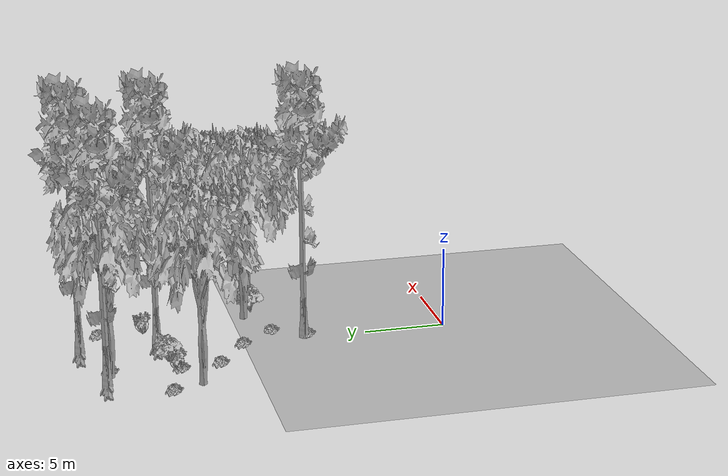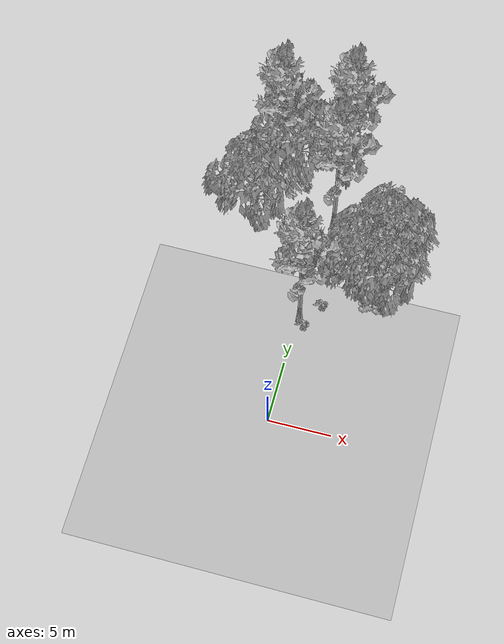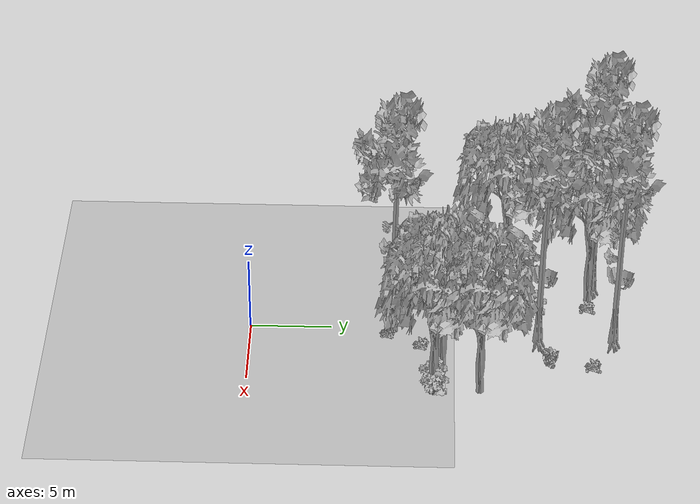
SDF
<sdf version="1.7">
 <world name="default">
  <model name="ground_plane">
   <static>1</static>
   <link name="link">
    <collision name="collision">
     <pose>-50 0 0 0 -0 0</pose>
     <geometry><plane><normal>0 0 1</normal><size>80 80</size></plane></geometry>
     <surface><contact><ode><min_depth>0.01</min_depth><max_vel>0</max_vel></ode></contact></surface>
    </collision>
    <visual name="grass">
     <cast_shadows>0</cast_shadows>
     <geometry>
      <mesh>
       <scale>0.46714285714285714 0.46714285714285714 0.1</scale>
       <uri>file://grass_plane/meshes/grass_plane.dae</uri>
      </mesh>
     </geometry>
    </visual>
   </link>
  </model>
  <model name="Tree 28">
   <static>1</static>
   <pose>-4.4084460784714565 21.315842113175883 0 1.57079 -0 0</pose>
   <link name="link">
    <collision name="collision">
     <geometry><mesh><scale>3.5 5 3.5</scale><uri>model://tree_9/meshes/tree_9.obj</uri></mesh></geometry>
    </collision>
    <visual name="visual">
     <geometry><mesh><scale>3.5 5 3.5</scale><uri>model://tree_9/meshes/tree_9.obj</uri></mesh></geometry>
    </visual>
   </link>
  </model>
  <model name="Tree 170">
   <static>1</static>
   <pose>-5.417349186433675 15.906392296588109 0 1.57079 -0 0</pose>
   <link name="link">
    <collision name="collision">
     <geometry><mesh><scale>3.5 5 3.5</scale><uri>model://tree_2/meshes/tree_2.obj</uri></mesh></geometry>
    </collision>
    <visual name="visual">
     <geometry><mesh><scale>3.5 5 3.5</scale><uri>model://tree_2/meshes/tree_2.obj</uri></mesh></geometry>
    </visual>
   </link>
  </model>
  <model name="Tree 251">
   <static>1</static>
   <pose>0.795492295190293 22.4082129513138 0 1.57079 -0 0</pose>
   <link name="link">
    <collision name="collision">
     <geometry><mesh><scale>3.5 5 3.5</scale><uri>model://tree_9/meshes/tree_9.obj</uri></mesh></geometry>
    </collision>
    <visual name="visual">
     <geometry><mesh><scale>3.5 5 3.5</scale><uri>model://tree_9/meshes/tree_9.obj</uri></mesh></geometry>
    </visual>
   </link>
  </model>
  <model name="Tree 309">
   <static>1</static>
   <pose>0.2209771321212699 8.826567919775108 0 1.57079 -0 0</pose>
   <link name="link">
    <collision name="collision">
     <geometry><mesh><scale>3.5 5 3.5</scale><uri>model://tree_9/meshes/tree_9.obj</uri></mesh></geometry>
    </collision>
    <visual name="visual">
     <geometry><mesh><scale>3.5 5 3.5</scale><uri>model://tree_9/meshes/tree_9.obj</uri></mesh></geometry>
    </visual>
   </link>
  </model>
  <model name="Tree 389">
   <static>1</static>
   <pose>-3.170250204577748 20.947474823802644 0 1.57079 -0 0</pose>
   <link name="link">
    <collision name="collision">
     <geometry><mesh><scale>3.5 5 3.5</scale><uri>model://tree_2/meshes/tree_2.obj</uri></mesh></geometry>
    </collision>
    <visual name="visual">
     <geometry><mesh><scale>3.5 5 3.5</scale><uri>model://tree_2/meshes/tree_2.obj</uri></mesh></geometry>
    </visual>
   </link>
  </model>
  <model name="Tree 458">
   <static>1</static>
   <pose>4.051383926262446 11.841430044016583 0 1.57079 -0 0</pose>
   <link name="link">
    <collision name="collision">
     <geometry><mesh><scale>3.5 5 3.5</scale><uri>model://tree_2/meshes/tree_2.obj</uri></mesh></geometry>
    </collision>
    <visual name="visual">
     <geometry><mesh><scale>3.5 5 3.5</scale><uri>model://tree_2/meshes/tree_2.obj</uri></mesh></geometry>
    </visual>
   </link>
  </model>
  <model name="Tree 497">
   <static>1</static>
   <pose>0.8266595844558822 17.767478885142545 0 1.57079 -0 0</pose>
   <link name="link">
    <collision name="collision">
     <geometry><mesh><scale>3.5 5 3.5</scale><uri>model://tree_9/meshes/tree_9.obj</uri></mesh></geometry>
    </collision>
    <visual name="visual">
     <geometry><mesh><scale>3.5 5 3.5</scale><uri>model://tree_9/meshes/tree_9.obj</uri></mesh></geometry>
    </visual>
   </link>
  </model>
  <model name="Tree 530">
   <static>1</static>
   <pose>5.713466053802463 11.347540337762439 0 1.57079 -0 0</pose>
   <link name="link">
    <collision name="collision">
     <geometry><mesh><scale>3.5 5 3.5</scale><uri>model://tree_2/meshes/tree_2.obj</uri></mesh></geometry>
    </collision>
    <visual name="visual">
     <geometry><mesh><scale>3.5 5 3.5</scale><uri>model://tree_2/meshes/tree_2.obj</uri></mesh></geometry>
    </visual>
   </link>
  </model>
  <model name="Tree 536">
   <static>1</static>
   <pose>5.755557848680098 14.11021828227674 0 1.57079 -0 0</pose>
   <link name="link">
    <collision name="collision">
     <geometry><mesh><scale>3.5 5 3.5</scale><uri>model://tree_2/meshes/tree_2.obj</uri></mesh></geometry>
    </collision>
    <visual name="visual">
     <geometry><mesh><scale>3.5 5 3.5</scale><uri>model://tree_2/meshes/tree_2.obj</uri></mesh></geometry>
    </visual>
   </link>
  </model>
  <model name="Bush 103">
   <static>1</static>
   <pose>5.1067889982777075 11.23509859049772 0 1.57079 -0 0</pose>
   <link name="link">
    <collision name="collision">
     <geometry><mesh><scale>2 2 2</scale><uri>model://bush_1/meshes/bush_1.obj</uri></mesh></geometry>
     <surface><contact><collide_without_contact>false</collide_without_contact></contact></surface>
    </collision>
    <visual name="visual">
     <geometry><mesh><scale>2 2 2</scale><uri>model://bush_1/meshes/bush_1.obj</uri></mesh></geometry>
    </visual>
   </link>
  </model>
  <model name="Bush 153">
   <static>1</static>
   <pose>-0.07277671318927048 12.623456255091021 0 1.57079 -0 0</pose>
   <link name="link">
    <collision name="collision">
     <geometry><mesh><scale>2 2 2</scale><uri>model://bush_2/meshes/bush_2.obj</uri></mesh></geometry>
     <surface><contact><collide_without_contact>false</collide_without_contact></contact></surface>
    </collision>
    <visual name="visual">
     <geometry><mesh><scale>2 2 2</scale><uri>model://bush_2/meshes/bush_2.obj</uri></mesh></geometry>
    </visual>
   </link>
  </model>
  <model name="Bush 167">
   <static>1</static>
   <pose>-2.8638015859416655 16.787904495019284 0 1.57079 -0 0</pose>
   <link name="link">
    <collision name="collision">
     <geometry><mesh><scale>2 2 2</scale><uri>model://bush_2/meshes/bush_2.obj</uri></mesh></geometry>
     <surface><contact><collide_without_contact>false</collide_without_contact></contact></surface>
    </collision>
    <visual name="visual">
     <geometry><mesh><scale>2 2 2</scale><uri>model://bush_2/meshes/bush_2.obj</uri></mesh></geometry>
    </visual>
   </link>
  </model>
  <model name="Bush 271">
   <static>1</static>
   <pose>3.252734625474446 18.321462572376376 0 1.57079 -0 0</pose>
   <link name="link">
    <collision name="collision">
     <geometry><mesh><scale>2 2 2</scale><uri>model://bush_4/meshes/bush_4.obj</uri></mesh></geometry>
     <surface><contact><collide_without_contact>false</collide_without_contact></contact></surface>
    </collision>
    <visual name="visual">
     <geometry><mesh><scale>2 2 2</scale><uri>model://bush_4/meshes/bush_4.obj</uri></mesh></geometry>
    </visual>
   </link>
  </model>
  <model name="Bush 299">
   <static>1</static>
   <pose>1.5800317290734043 10.574041564028754 0 1.57079 -0 0</pose>
   <link name="link">
    <collision name="collision">
     <geometry><mesh><scale>2 2 2</scale><uri>model://bush_2/meshes/bush_2.obj</uri></mesh></geometry>
     <surface><contact><collide_without_contact>false</collide_without_contact></contact></surface>
    </collision>
    <visual name="visual">
     <geometry><mesh><scale>2 2 2</scale><uri>model://bush_2/meshes/bush_2.obj</uri></mesh></geometry>
    </visual>
   </link>
  </model>
  <model name="Bush 358">
   <static>1</static>
   <pose>-2.9721371128487135 17.02572908088254 0 1.57079 -0 0</pose>
   <link name="link">
    <collision name="collision">
     <geometry><mesh><scale>2 2 2</scale><uri>model://bush_4/meshes/bush_4.obj</uri></mesh></geometry>
     <surface><contact><collide_without_contact>false</collide_without_contact></contact></surface>
    </collision>
    <visual name="visual">
     <geometry><mesh><scale>2 2 2</scale><uri>model://bush_4/meshes/bush_4.obj</uri></mesh></geometry>
    </visual>
   </link>
  </model>
  <model name="Bush 371">
   <static>1</static>
   <pose>6.21323883691975 11.328868931913966 0 1.57079 -0 0</pose>
   <link name="link">
    <collision name="collision">
     <geometry><mesh><scale>2 2 2</scale><uri>model://bush_1/meshes/bush_1.obj</uri></mesh></geometry>
     <surface><contact><collide_without_contact>false</collide_without_contact></contact></surface>
    </collision>
    <visual name="visual">
     <geometry><mesh><scale>2 2 2</scale><uri>model://bush_1/meshes/bush_1.obj</uri></mesh></geometry>
    </visual>
   </link>
  </model>
  <model name="Bush 375">
   <static>1</static>
   <pose>-5.919450214718914 17.66610338935888 0 1.57079 -0 0</pose>
   <link name="link">
    <collision name="collision">
     <geometry><mesh><scale>2 2 2</scale><uri>model://bush_2/meshes/bush_2.obj</uri></mesh></geometry>
     <surface><contact><collide_without_contact>false</collide_without_contact></contact></surface>
    </collision>
    <visual name="visual">
     <geometry><mesh><scale>2 2 2</scale><uri>model://bush_2/meshes/bush_2.obj</uri></mesh></geometry>
    </visual>
   </link>
  </model>
  <model name="Bush 456">
   <static>1</static>
   <pose>-2.6099694954979853 14.411440270474685 0 1.57079 -0 0</pose>
   <link name="link">
    <collision name="collision">
     <geometry><mesh><scale>2 2 2</scale><uri>model://bush_2/meshes/bush_2.obj</uri></mesh></geometry>
     <surface><contact><collide_without_contact>false</collide_without_contact></contact></surface>
    </collision>
    <visual name="visual">
     <geometry><mesh><scale>2 2 2</scale><uri>model://bush_2/meshes/bush_2.obj</uri></mesh></geometry>
    </visual>
   </link>
  </model>
  <model name="Bush 520">
   <static>1</static>
   <pose>-2.330897537258771 20.9273213471363 0 1.57079 -0 0</pose>
   <link name="link">
    <collision name="collision">
     <geometry><mesh><scale>2 2 2</scale><uri>model://bush_2/meshes/bush_2.obj</uri></mesh></geometry>
     <surface><contact><collide_without_contact>false</collide_without_contact></contact></surface>
    </collision>
    <visual name="visual">
     <geometry><mesh><scale>2 2 2</scale><uri>model://bush_2/meshes/bush_2.obj</uri></mesh></geometry>
    </visual>
   </link>
  </model>
  <model name="Bush 583">
   <static>1</static>
   <pose>-1.5060476431528684 17.40609262008823 0 1.57079 -0 0</pose>
   <link name="link">
    <collision name="collision">
     <geometry><mesh><scale>2 2 2</scale><uri>model://bush_1/meshes/bush_1.obj</uri></mesh></geometry>
     <surface><contact><collide_without_contact>false</collide_without_contact></contact></surface>
    </collision>
    <visual name="visual">
     <geometry><mesh><scale>2 2 2</scale><uri>model://bush_1/meshes/bush_1.obj</uri></mesh></geometry>
    </visual>
   </link>
  </model>
  <model name="Bush 585">
   <static>1</static>
   <pose>0.5471046354614941 8.51075202328584 0 1.57079 -0 0</pose>
   <link name="link">
    <collision name="collision">
     <geometry><mesh><scale>2 2 2</scale><uri>model://bush_2/meshes/bush_2.obj</uri></mesh></geometry>
     <surface><contact><collide_without_contact>false</collide_without_contact></contact></surface>
    </collision>
    <visual name="visual">
     <geometry><mesh><scale>2 2 2</scale><uri>model://bush_2/meshes/bush_2.obj</uri></mesh></geometry>
    </visual>
   </link>
  </model>
  <model name="Bush 611">
   <static>1</static>
   <pose>3.3404624448593836 21.064360885810245 0 1.57079 -0 0</pose>
   <link name="link">
    <collision name="collision">
     <geometry><mesh><scale>2 2 2</scale><uri>model://bush_2/meshes/bush_2.obj</uri></mesh></geometry>
     <surface><contact><collide_without_contact>false</collide_without_contact></contact></surface>
    </collision>
    <visual name="visual">
     <geometry><mesh><scale>2 2 2</scale><uri>model://bush_2/meshes/bush_2.obj</uri></mesh></geometry>
    </visual>
   </link>
  </model>
 </world>
</sdf>
